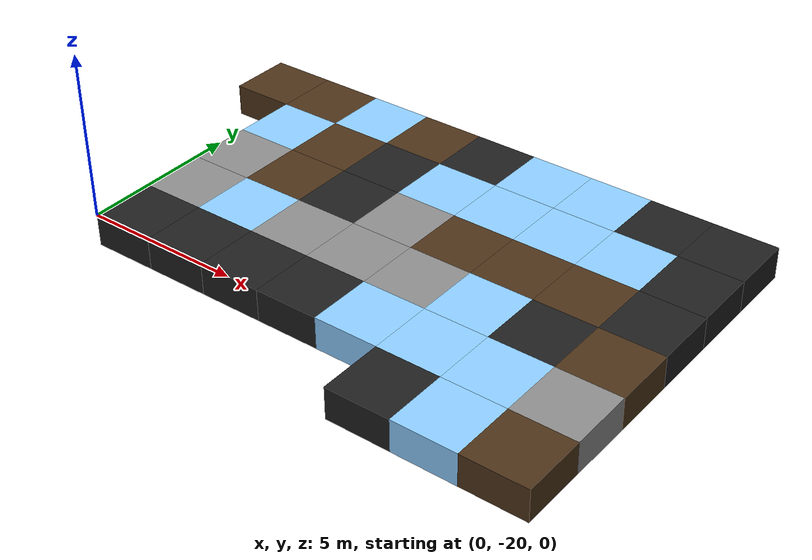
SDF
<sdf version="1.5">
 <world name="squares_example">
  <model name="tile_21_5">
   <static>true</static>
   <pose>11.000 -21.000 -0.500 0 0 0</pose>
   <link name="link">
    <collision name="col">
     <geometry><box><size>2.0 2.0 1.0</size></box></geometry>
     <surface>
      <friction>
       <ode><mu>0.4</mu><mu2>0.15</mu2><fdir1>1 0 0</fdir1><slip1>0.0</slip1><slip2>0.0</slip2></ode>
       <torsional>
        <coefficient>0.03</coefficient>
        <use_patch_radius>false</use_patch_radius>
        <surface_radius>0.12</surface_radius>
        <ode><slip>0.0</slip></ode>
       </torsional>
      </friction>
      <bounce><restitution_coefficient>0.0</restitution_coefficient><threshold>0.1</threshold></bounce>
      <contact>
       <ode><kp>1000000000.0</kp><kd>1000000.0</kd><max_vel>0.01</max_vel><min_depth>0.0</min_depth></ode>
      </contact>
     </surface>
    </collision>
    <visual name="visual">
     <geometry><box><size>2.0 2.0 1.0</size></box></geometry>
     <material>
      <diffuse>0.12 0.12 0.12 1</diffuse>
      <ambient>0 0 0 0</ambient>
      <specular>0 0 0 1</specular>
      <emissive>0 0 0 1</emissive>
     </material>
    </visual>
   </link>
  </model>
  <model name="tile_22_5">
   <static>true</static>
   <pose>13.000 -21.000 -0.500 0 0 0</pose>
   <link name="link">
    <collision name="col">
     <geometry><box><size>2.0 2.0 1.0</size></box></geometry>
     <surface>
      <friction>
       <ode><mu>0.03</mu><mu2>0.02</mu2><fdir1>1 0 0</fdir1><slip1>0.03</slip1><slip2>0.03</slip2></ode>
       <torsional>
        <coefficient>0.005</coefficient>
        <use_patch_radius>false</use_patch_radius>
        <surface_radius>0.12</surface_radius>
        <ode><slip>0.01</slip></ode>
       </torsional>
      </friction>
      <bounce><restitution_coefficient>0.0</restitution_coefficient><threshold>0.1</threshold></bounce>
      <contact>
       <ode><kp>10000000.0</kp><kd>1000.0</kd><max_vel>0.01</max_vel><min_depth>0.0</min_depth></ode>
      </contact>
     </surface>
    </collision>
    <visual name="visual">
     <geometry><box><size>2.0 2.0 1.0</size></box></geometry>
     <material>
      <diffuse>0.55 0.80 1.00 1</diffuse>
      <ambient>0 0 0 0</ambient>
      <specular>0 0 0 1</specular>
      <emissive>0 0 0 1</emissive>
     </material>
    </visual>
   </link>
  </model>
  <model name="tile_23_5">
   <static>true</static>
   <pose>15.000 -21.000 -0.500 0 0 0</pose>
   <link name="link">
    <collision name="col">
     <geometry><box><size>2.0 2.0 1.0</size></box></geometry>
     <surface>
      <friction>
       <ode><mu>0.6</mu><mu2>0.4</mu2><fdir1>1 0 0</fdir1><slip1>0.08</slip1><slip2>0.08</slip2></ode>
       <torsional>
        <coefficient>0.03</coefficient>
        <use_patch_radius>false</use_patch_radius>
        <surface_radius>0.12</surface_radius>
        <ode><slip>0.0</slip></ode>
       </torsional>
      </friction>
      <bounce><restitution_coefficient>0.0</restitution_coefficient><threshold>0.1</threshold></bounce>
      <contact>
       <ode><kp>1000000.0</kp><kd>10000.0</kd><max_vel>0.01</max_vel><min_depth>0.0</min_depth></ode>
      </contact>
     </surface>
    </collision>
    <visual name="visual">
     <geometry><box><size>2.0 2.0 1.0</size></box></geometry>
     <material>
      <diffuse>0.30 0.20 0.10 1</diffuse>
      <ambient>0 0 0 0</ambient>
      <specular>0 0 0 1</specular>
      <emissive>0 0 0 1</emissive>
     </material>
    </visual>
   </link>
  </model>
  <model name="tile_16_6">
   <static>true</static>
   <pose>1.000 -19.000 -0.500 0 0 0</pose>
   <link name="link">
    <collision name="col">
     <geometry><box><size>2.0 2.0 1.0</size></box></geometry>
     <surface>
      <friction>
       <ode><mu>0.4</mu><mu2>0.15</mu2><fdir1>1 0 0</fdir1><slip1>0.0</slip1><slip2>0.0</slip2></ode>
       <torsional>
        <coefficient>0.03</coefficient>
        <use_patch_radius>false</use_patch_radius>
        <surface_radius>0.12</surface_radius>
        <ode><slip>0.0</slip></ode>
       </torsional>
      </friction>
      <bounce><restitution_coefficient>0.0</restitution_coefficient><threshold>0.1</threshold></bounce>
      <contact>
       <ode><kp>1000000000.0</kp><kd>1000000.0</kd><max_vel>0.01</max_vel><min_depth>0.0</min_depth></ode>
      </contact>
     </surface>
    </collision>
    <visual name="visual">
     <geometry><box><size>2.0 2.0 1.0</size></box></geometry>
     <material>
      <diffuse>0.12 0.12 0.12 1</diffuse>
      <ambient>0 0 0 0</ambient>
      <specular>0 0 0 1</specular>
      <emissive>0 0 0 1</emissive>
     </material>
    </visual>
   </link>
  </model>
  <model name="tile_17_6">
   <static>true</static>
   <pose>3.000 -19.000 -0.500 0 0 0</pose>
   <link name="link">
    <collision name="col">
     <geometry><box><size>2.0 2.0 1.0</size></box></geometry>
     <surface>
      <friction>
       <ode><mu>0.4</mu><mu2>0.15</mu2><fdir1>1 0 0</fdir1><slip1>0.0</slip1><slip2>0.0</slip2></ode>
       <torsional>
        <coefficient>0.03</coefficient>
        <use_patch_radius>false</use_patch_radius>
        <surface_radius>0.12</surface_radius>
        <ode><slip>0.0</slip></ode>
       </torsional>
      </friction>
      <bounce><restitution_coefficient>0.0</restitution_coefficient><threshold>0.1</threshold></bounce>
      <contact>
       <ode><kp>1000000000.0</kp><kd>1000000.0</kd><max_vel>0.01</max_vel><min_depth>0.0</min_depth></ode>
      </contact>
     </surface>
    </collision>
    <visual name="visual">
     <geometry><box><size>2.0 2.0 1.0</size></box></geometry>
     <material>
      <diffuse>0.12 0.12 0.12 1</diffuse>
      <ambient>0 0 0 0</ambient>
      <specular>0 0 0 1</specular>
      <emissive>0 0 0 1</emissive>
     </material>
    </visual>
   </link>
  </model>
  <model name="tile_18_6">
   <static>true</static>
   <pose>5.000 -19.000 -0.500 0 0 0</pose>
   <link name="link">
    <collision name="col">
     <geometry><box><size>2.0 2.0 1.0</size></box></geometry>
     <surface>
      <friction>
       <ode><mu>0.4</mu><mu2>0.15</mu2><fdir1>1 0 0</fdir1><slip1>0.0</slip1><slip2>0.0</slip2></ode>
       <torsional>
        <coefficient>0.03</coefficient>
        <use_patch_radius>false</use_patch_radius>
        <surface_radius>0.12</surface_radius>
        <ode><slip>0.0</slip></ode>
       </torsional>
      </friction>
      <bounce><restitution_coefficient>0.0</restitution_coefficient><threshold>0.1</threshold></bounce>
      <contact>
       <ode><kp>1000000000.0</kp><kd>1000000.0</kd><max_vel>0.01</max_vel><min_depth>0.0</min_depth></ode>
      </contact>
     </surface>
    </collision>
    <visual name="visual">
     <geometry><box><size>2.0 2.0 1.0</size></box></geometry>
     <material>
      <diffuse>0.12 0.12 0.12 1</diffuse>
      <ambient>0 0 0 0</ambient>
      <specular>0 0 0 1</specular>
      <emissive>0 0 0 1</emissive>
     </material>
    </visual>
   </link>
  </model>
  <model name="tile_19_6">
   <static>true</static>
   <pose>7.000 -19.000 -0.500 0 0 0</pose>
   <link name="link">
    <collision name="col">
     <geometry><box><size>2.0 2.0 1.0</size></box></geometry>
     <surface>
      <friction>
       <ode><mu>0.4</mu><mu2>0.15</mu2><fdir1>1 0 0</fdir1><slip1>0.0</slip1><slip2>0.0</slip2></ode>
       <torsional>
        <coefficient>0.03</coefficient>
        <use_patch_radius>false</use_patch_radius>
        <surface_radius>0.12</surface_radius>
        <ode><slip>0.0</slip></ode>
       </torsional>
      </friction>
      <bounce><restitution_coefficient>0.0</restitution_coefficient><threshold>0.1</threshold></bounce>
      <contact>
       <ode><kp>1000000000.0</kp><kd>1000000.0</kd><max_vel>0.01</max_vel><min_depth>0.0</min_depth></ode>
      </contact>
     </surface>
    </collision>
    <visual name="visual">
     <geometry><box><size>2.0 2.0 1.0</size></box></geometry>
     <material>
      <diffuse>0.12 0.12 0.12 1</diffuse>
      <ambient>0 0 0 0</ambient>
      <specular>0 0 0 1</specular>
      <emissive>0 0 0 1</emissive>
     </material>
    </visual>
   </link>
  </model>
  <model name="tile_20_6">
   <static>true</static>
   <pose>9.000 -19.000 -0.500 0 0 0</pose>
   <link name="link">
    <collision name="col">
     <geometry><box><size>2.0 2.0 1.0</size></box></geometry>
     <surface>
      <friction>
       <ode><mu>0.03</mu><mu2>0.02</mu2><fdir1>1 0 0</fdir1><slip1>0.03</slip1><slip2>0.03</slip2></ode>
       <torsional>
        <coefficient>0.005</coefficient>
        <use_patch_radius>false</use_patch_radius>
        <surface_radius>0.12</surface_radius>
        <ode><slip>0.01</slip></ode>
       </torsional>
      </friction>
      <bounce><restitution_coefficient>0.0</restitution_coefficient><threshold>0.1</threshold></bounce>
      <contact>
       <ode><kp>10000000.0</kp><kd>1000.0</kd><max_vel>0.01</max_vel><min_depth>0.0</min_depth></ode>
      </contact>
     </surface>
    </collision>
    <visual name="visual">
     <geometry><box><size>2.0 2.0 1.0</size></box></geometry>
     <material>
      <diffuse>0.55 0.80 1.00 1</diffuse>
      <ambient>0 0 0 0</ambient>
      <specular>0 0 0 1</specular>
      <emissive>0 0 0 1</emissive>
     </material>
    </visual>
   </link>
  </model>
  <model name="tile_21_6">
   <static>true</static>
   <pose>11.000 -19.000 -0.500 0 0 0</pose>
   <link name="link">
    <collision name="col">
     <geometry><box><size>2.0 2.0 1.0</size></box></geometry>
     <surface>
      <friction>
       <ode><mu>0.03</mu><mu2>0.02</mu2><fdir1>1 0 0</fdir1><slip1>0.03</slip1><slip2>0.03</slip2></ode>
       <torsional>
        <coefficient>0.005</coefficient>
        <use_patch_radius>false</use_patch_radius>
        <surface_radius>0.12</surface_radius>
        <ode><slip>0.01</slip></ode>
       </torsional>
      </friction>
      <bounce><restitution_coefficient>0.0</restitution_coefficient><threshold>0.1</threshold></bounce>
      <contact>
       <ode><kp>10000000.0</kp><kd>1000.0</kd><max_vel>0.01</max_vel><min_depth>0.0</min_depth></ode>
      </contact>
     </surface>
    </collision>
    <visual name="visual">
     <geometry><box><size>2.0 2.0 1.0</size></box></geometry>
     <material>
      <diffuse>0.55 0.80 1.00 1</diffuse>
      <ambient>0 0 0 0</ambient>
      <specular>0 0 0 1</specular>
      <emissive>0 0 0 1</emissive>
     </material>
    </visual>
   </link>
  </model>
  <model name="tile_22_6">
   <static>true</static>
   <pose>13.000 -19.000 -0.500 0 0 0</pose>
   <link name="link">
    <collision name="col">
     <geometry><box><size>2.0 2.0 1.0</size></box></geometry>
     <surface>
      <friction>
       <ode><mu>0.03</mu><mu2>0.02</mu2><fdir1>1 0 0</fdir1><slip1>0.03</slip1><slip2>0.03</slip2></ode>
       <torsional>
        <coefficient>0.005</coefficient>
        <use_patch_radius>false</use_patch_radius>
        <surface_radius>0.12</surface_radius>
        <ode><slip>0.01</slip></ode>
       </torsional>
      </friction>
      <bounce><restitution_coefficient>0.0</restitution_coefficient><threshold>0.1</threshold></bounce>
      <contact>
       <ode><kp>10000000.0</kp><kd>1000.0</kd><max_vel>0.01</max_vel><min_depth>0.0</min_depth></ode>
      </contact>
     </surface>
    </collision>
    <visual name="visual">
     <geometry><box><size>2.0 2.0 1.0</size></box></geometry>
     <material>
      <diffuse>0.55 0.80 1.00 1</diffuse>
      <ambient>0 0 0 0</ambient>
      <specular>0 0 0 1</specular>
      <emissive>0 0 0 1</emissive>
     </material>
    </visual>
   </link>
  </model>
  <model name="tile_23_6">
   <static>true</static>
   <pose>15.000 -19.000 -0.500 0 0 0</pose>
   <link name="link">
    <collision name="col">
     <geometry><box><size>2.0 2.0 1.0</size></box></geometry>
     <surface>
      <friction>
       <ode><mu>0.8</mu><mu2>0.3</mu2><fdir1>1 0 0</fdir1><slip1>0.0</slip1><slip2>0.0</slip2></ode>
       <torsional>
        <coefficient>0.03</coefficient>
        <use_patch_radius>false</use_patch_radius>
        <surface_radius>0.12</surface_radius>
        <ode><slip>0.0</slip></ode>
       </torsional>
      </friction>
      <bounce><restitution_coefficient>0.0</restitution_coefficient><threshold>0.1</threshold></bounce>
      <contact>
       <ode><kp>10000000000.0</kp><kd>10000000.0</kd><max_vel>0.01</max_vel><min_depth>0.0</min_depth></ode>
      </contact>
     </surface>
    </collision>
    <visual name="visual">
     <geometry><box><size>2.0 2.0 1.0</size></box></geometry>
     <material>
      <diffuse>0.55 0.55 0.55 1</diffuse>
      <ambient>0 0 0 0</ambient>
      <specular>0 0 0 1</specular>
      <emissive>0 0 0 1</emissive>
     </material>
    </visual>
   </link>
  </model>
  <model name="tile_16_7">
   <static>true</static>
   <pose>1.000 -17.000 -0.500 0 0 0</pose>
   <link name="link">
    <collision name="col">
     <geometry><box><size>2.0 2.0 1.0</size></box></geometry>
     <surface>
      <friction>
       <ode><mu>0.8</mu><mu2>0.3</mu2><fdir1>1 0 0</fdir1><slip1>0.0</slip1><slip2>0.0</slip2></ode>
       <torsional>
        <coefficient>0.03</coefficient>
        <use_patch_radius>false</use_patch_radius>
        <surface_radius>0.12</surface_radius>
        <ode><slip>0.0</slip></ode>
       </torsional>
      </friction>
      <bounce><restitution_coefficient>0.0</restitution_coefficient><threshold>0.1</threshold></bounce>
      <contact>
       <ode><kp>10000000000.0</kp><kd>10000000.0</kd><max_vel>0.01</max_vel><min_depth>0.0</min_depth></ode>
      </contact>
     </surface>
    </collision>
    <visual name="visual">
     <geometry><box><size>2.0 2.0 1.0</size></box></geometry>
     <material>
      <diffuse>0.55 0.55 0.55 1</diffuse>
      <ambient>0 0 0 0</ambient>
      <specular>0 0 0 1</specular>
      <emissive>0 0 0 1</emissive>
     </material>
    </visual>
   </link>
  </model>
  <model name="tile_17_7">
   <static>true</static>
   <pose>3.000 -17.000 -0.500 0 0 0</pose>
   <link name="link">
    <collision name="col">
     <geometry><box><size>2.0 2.0 1.0</size></box></geometry>
     <surface>
      <friction>
       <ode><mu>0.03</mu><mu2>0.02</mu2><fdir1>1 0 0</fdir1><slip1>0.03</slip1><slip2>0.03</slip2></ode>
       <torsional>
        <coefficient>0.005</coefficient>
        <use_patch_radius>false</use_patch_radius>
        <surface_radius>0.12</surface_radius>
        <ode><slip>0.01</slip></ode>
       </torsional>
      </friction>
      <bounce><restitution_coefficient>0.0</restitution_coefficient><threshold>0.1</threshold></bounce>
      <contact>
       <ode><kp>10000000.0</kp><kd>1000.0</kd><max_vel>0.01</max_vel><min_depth>0.0</min_depth></ode>
      </contact>
     </surface>
    </collision>
    <visual name="visual">
     <geometry><box><size>2.0 2.0 1.0</size></box></geometry>
     <material>
      <diffuse>0.55 0.80 1.00 1</diffuse>
      <ambient>0 0 0 0</ambient>
      <specular>0 0 0 1</specular>
      <emissive>0 0 0 1</emissive>
     </material>
    </visual>
   </link>
  </model>
  <model name="tile_18_7">
   <static>true</static>
   <pose>5.000 -17.000 -0.500 0 0 0</pose>
   <link name="link">
    <collision name="col">
     <geometry><box><size>2.0 2.0 1.0</size></box></geometry>
     <surface>
      <friction>
       <ode><mu>0.8</mu><mu2>0.3</mu2><fdir1>1 0 0</fdir1><slip1>0.0</slip1><slip2>0.0</slip2></ode>
       <torsional>
        <coefficient>0.03</coefficient>
        <use_patch_radius>false</use_patch_radius>
        <surface_radius>0.12</surface_radius>
        <ode><slip>0.0</slip></ode>
       </torsional>
      </friction>
      <bounce><restitution_coefficient>0.0</restitution_coefficient><threshold>0.1</threshold></bounce>
      <contact>
       <ode><kp>10000000000.0</kp><kd>10000000.0</kd><max_vel>0.01</max_vel><min_depth>0.0</min_depth></ode>
      </contact>
     </surface>
    </collision>
    <visual name="visual">
     <geometry><box><size>2.0 2.0 1.0</size></box></geometry>
     <material>
      <diffuse>0.55 0.55 0.55 1</diffuse>
      <ambient>0 0 0 0</ambient>
      <specular>0 0 0 1</specular>
      <emissive>0 0 0 1</emissive>
     </material>
    </visual>
   </link>
  </model>
  <model name="tile_19_7">
   <static>true</static>
   <pose>7.000 -17.000 -0.500 0 0 0</pose>
   <link name="link">
    <collision name="col">
     <geometry><box><size>2.0 2.0 1.0</size></box></geometry>
     <surface>
      <friction>
       <ode><mu>0.8</mu><mu2>0.3</mu2><fdir1>1 0 0</fdir1><slip1>0.0</slip1><slip2>0.0</slip2></ode>
       <torsional>
        <coefficient>0.03</coefficient>
        <use_patch_radius>false</use_patch_radius>
        <surface_radius>0.12</surface_radius>
        <ode><slip>0.0</slip></ode>
       </torsional>
      </friction>
      <bounce><restitution_coefficient>0.0</restitution_coefficient><threshold>0.1</threshold></bounce>
      <contact>
       <ode><kp>10000000000.0</kp><kd>10000000.0</kd><max_vel>0.01</max_vel><min_depth>0.0</min_depth></ode>
      </contact>
     </surface>
    </collision>
    <visual name="visual">
     <geometry><box><size>2.0 2.0 1.0</size></box></geometry>
     <material>
      <diffuse>0.55 0.55 0.55 1</diffuse>
      <ambient>0 0 0 0</ambient>
      <specular>0 0 0 1</specular>
      <emissive>0 0 0 1</emissive>
     </material>
    </visual>
   </link>
  </model>
  <model name="tile_20_7">
   <static>true</static>
   <pose>9.000 -17.000 -0.500 0 0 0</pose>
   <link name="link">
    <collision name="col">
     <geometry><box><size>2.0 2.0 1.0</size></box></geometry>
     <surface>
      <friction>
       <ode><mu>0.8</mu><mu2>0.3</mu2><fdir1>1 0 0</fdir1><slip1>0.0</slip1><slip2>0.0</slip2></ode>
       <torsional>
        <coefficient>0.03</coefficient>
        <use_patch_radius>false</use_patch_radius>
        <surface_radius>0.12</surface_radius>
        <ode><slip>0.0</slip></ode>
       </torsional>
      </friction>
      <bounce><restitution_coefficient>0.0</restitution_coefficient><threshold>0.1</threshold></bounce>
      <contact>
       <ode><kp>10000000000.0</kp><kd>10000000.0</kd><max_vel>0.01</max_vel><min_depth>0.0</min_depth></ode>
      </contact>
     </surface>
    </collision>
    <visual name="visual">
     <geometry><box><size>2.0 2.0 1.0</size></box></geometry>
     <material>
      <diffuse>0.55 0.55 0.55 1</diffuse>
      <ambient>0 0 0 0</ambient>
      <specular>0 0 0 1</specular>
      <emissive>0 0 0 1</emissive>
     </material>
    </visual>
   </link>
  </model>
  <model name="tile_21_7">
   <static>true</static>
   <pose>11.000 -17.000 -0.500 0 0 0</pose>
   <link name="link">
    <collision name="col">
     <geometry><box><size>2.0 2.0 1.0</size></box></geometry>
     <surface>
      <friction>
       <ode><mu>0.03</mu><mu2>0.02</mu2><fdir1>1 0 0</fdir1><slip1>0.03</slip1><slip2>0.03</slip2></ode>
       <torsional>
        <coefficient>0.005</coefficient>
        <use_patch_radius>false</use_patch_radius>
        <surface_radius>0.12</surface_radius>
        <ode><slip>0.01</slip></ode>
       </torsional>
      </friction>
      <bounce><restitution_coefficient>0.0</restitution_coefficient><threshold>0.1</threshold></bounce>
      <contact>
       <ode><kp>10000000.0</kp><kd>1000.0</kd><max_vel>0.01</max_vel><min_depth>0.0</min_depth></ode>
      </contact>
     </surface>
    </collision>
    <visual name="visual">
     <geometry><box><size>2.0 2.0 1.0</size></box></geometry>
     <material>
      <diffuse>0.55 0.80 1.00 1</diffuse>
      <ambient>0 0 0 0</ambient>
      <specular>0 0 0 1</specular>
      <emissive>0 0 0 1</emissive>
     </material>
    </visual>
   </link>
  </model>
  <model name="tile_22_7">
   <static>true</static>
   <pose>13.000 -17.000 -0.500 0 0 0</pose>
   <link name="link">
    <collision name="col">
     <geometry><box><size>2.0 2.0 1.0</size></box></geometry>
     <surface>
      <friction>
       <ode><mu>0.4</mu><mu2>0.15</mu2><fdir1>1 0 0</fdir1><slip1>0.0</slip1><slip2>0.0</slip2></ode>
       <torsional>
        <coefficient>0.03</coefficient>
        <use_patch_radius>false</use_patch_radius>
        <surface_radius>0.12</surface_radius>
        <ode><slip>0.0</slip></ode>
       </torsional>
      </friction>
      <bounce><restitution_coefficient>0.0</restitution_coefficient><threshold>0.1</threshold></bounce>
      <contact>
       <ode><kp>1000000000.0</kp><kd>1000000.0</kd><max_vel>0.01</max_vel><min_depth>0.0</min_depth></ode>
      </contact>
     </surface>
    </collision>
    <visual name="visual">
     <geometry><box><size>2.0 2.0 1.0</size></box></geometry>
     <material>
      <diffuse>0.12 0.12 0.12 1</diffuse>
      <ambient>0 0 0 0</ambient>
      <specular>0 0 0 1</specular>
      <emissive>0 0 0 1</emissive>
     </material>
    </visual>
   </link>
  </model>
  <model name="tile_23_7">
   <static>true</static>
   <pose>15.000 -17.000 -0.500 0 0 0</pose>
   <link name="link">
    <collision name="col">
     <geometry><box><size>2.0 2.0 1.0</size></box></geometry>
     <surface>
      <friction>
       <ode><mu>0.6</mu><mu2>0.4</mu2><fdir1>1 0 0</fdir1><slip1>0.08</slip1><slip2>0.08</slip2></ode>
       <torsional>
        <coefficient>0.03</coefficient>
        <use_patch_radius>false</use_patch_radius>
        <surface_radius>0.12</surface_radius>
        <ode><slip>0.0</slip></ode>
       </torsional>
      </friction>
      <bounce><restitution_coefficient>0.0</restitution_coefficient><threshold>0.1</threshold></bounce>
      <contact>
       <ode><kp>1000000.0</kp><kd>10000.0</kd><max_vel>0.01</max_vel><min_depth>0.0</min_depth></ode>
      </contact>
     </surface>
    </collision>
    <visual name="visual">
     <geometry><box><size>2.0 2.0 1.0</size></box></geometry>
     <material>
      <diffuse>0.30 0.20 0.10 1</diffuse>
      <ambient>0 0 0 0</ambient>
      <specular>0 0 0 1</specular>
      <emissive>0 0 0 1</emissive>
     </material>
    </visual>
   </link>
  </model>
  <model name="tile_16_8">
   <static>true</static>
   <pose>1.000 -15.000 -0.500 0 0 0</pose>
   <link name="link">
    <collision name="col">
     <geometry><box><size>2.0 2.0 1.0</size></box></geometry>
     <surface>
      <friction>
       <ode><mu>0.8</mu><mu2>0.3</mu2><fdir1>1 0 0</fdir1><slip1>0.0</slip1><slip2>0.0</slip2></ode>
       <torsional>
        <coefficient>0.03</coefficient>
        <use_patch_radius>false</use_patch_radius>
        <surface_radius>0.12</surface_radius>
        <ode><slip>0.0</slip></ode>
       </torsional>
      </friction>
      <bounce><restitution_coefficient>0.0</restitution_coefficient><threshold>0.1</threshold></bounce>
      <contact>
       <ode><kp>10000000000.0</kp><kd>10000000.0</kd><max_vel>0.01</max_vel><min_depth>0.0</min_depth></ode>
      </contact>
     </surface>
    </collision>
    <visual name="visual">
     <geometry><box><size>2.0 2.0 1.0</size></box></geometry>
     <material>
      <diffuse>0.55 0.55 0.55 1</diffuse>
      <ambient>0 0 0 0</ambient>
      <specular>0 0 0 1</specular>
      <emissive>0 0 0 1</emissive>
     </material>
    </visual>
   </link>
  </model>
  <model name="tile_17_8">
   <static>true</static>
   <pose>3.000 -15.000 -0.500 0 0 0</pose>
   <link name="link">
    <collision name="col">
     <geometry><box><size>2.0 2.0 1.0</size></box></geometry>
     <surface>
      <friction>
       <ode><mu>0.6</mu><mu2>0.4</mu2><fdir1>1 0 0</fdir1><slip1>0.08</slip1><slip2>0.08</slip2></ode>
       <torsional>
        <coefficient>0.03</coefficient>
        <use_patch_radius>false</use_patch_radius>
        <surface_radius>0.12</surface_radius>
        <ode><slip>0.0</slip></ode>
       </torsional>
      </friction>
      <bounce><restitution_coefficient>0.0</restitution_coefficient><threshold>0.1</threshold></bounce>
      <contact>
       <ode><kp>1000000.0</kp><kd>10000.0</kd><max_vel>0.01</max_vel><min_depth>0.0</min_depth></ode>
      </contact>
     </surface>
    </collision>
    <visual name="visual">
     <geometry><box><size>2.0 2.0 1.0</size></box></geometry>
     <material>
      <diffuse>0.30 0.20 0.10 1</diffuse>
      <ambient>0 0 0 0</ambient>
      <specular>0 0 0 1</specular>
      <emissive>0 0 0 1</emissive>
     </material>
    </visual>
   </link>
  </model>
  <model name="tile_18_8">
   <static>true</static>
   <pose>5.000 -15.000 -0.500 0 0 0</pose>
   <link name="link">
    <collision name="col">
     <geometry><box><size>2.0 2.0 1.0</size></box></geometry>
     <surface>
      <friction>
       <ode><mu>0.4</mu><mu2>0.15</mu2><fdir1>1 0 0</fdir1><slip1>0.0</slip1><slip2>0.0</slip2></ode>
       <torsional>
        <coefficient>0.03</coefficient>
        <use_patch_radius>false</use_patch_radius>
        <surface_radius>0.12</surface_radius>
        <ode><slip>0.0</slip></ode>
       </torsional>
      </friction>
      <bounce><restitution_coefficient>0.0</restitution_coefficient><threshold>0.1</threshold></bounce>
      <contact>
       <ode><kp>1000000000.0</kp><kd>1000000.0</kd><max_vel>0.01</max_vel><min_depth>0.0</min_depth></ode>
      </contact>
     </surface>
    </collision>
    <visual name="visual">
     <geometry><box><size>2.0 2.0 1.0</size></box></geometry>
     <material>
      <diffuse>0.12 0.12 0.12 1</diffuse>
      <ambient>0 0 0 0</ambient>
      <specular>0 0 0 1</specular>
      <emissive>0 0 0 1</emissive>
     </material>
    </visual>
   </link>
  </model>
  <model name="tile_19_8">
   <static>true</static>
   <pose>7.000 -15.000 -0.500 0 0 0</pose>
   <link name="link">
    <collision name="col">
     <geometry><box><size>2.0 2.0 1.0</size></box></geometry>
     <surface>
      <friction>
       <ode><mu>0.8</mu><mu2>0.3</mu2><fdir1>1 0 0</fdir1><slip1>0.0</slip1><slip2>0.0</slip2></ode>
       <torsional>
        <coefficient>0.03</coefficient>
        <use_patch_radius>false</use_patch_radius>
        <surface_radius>0.12</surface_radius>
        <ode><slip>0.0</slip></ode>
       </torsional>
      </friction>
      <bounce><restitution_coefficient>0.0</restitution_coefficient><threshold>0.1</threshold></bounce>
      <contact>
       <ode><kp>10000000000.0</kp><kd>10000000.0</kd><max_vel>0.01</max_vel><min_depth>0.0</min_depth></ode>
      </contact>
     </surface>
    </collision>
    <visual name="visual">
     <geometry><box><size>2.0 2.0 1.0</size></box></geometry>
     <material>
      <diffuse>0.55 0.55 0.55 1</diffuse>
      <ambient>0 0 0 0</ambient>
      <specular>0 0 0 1</specular>
      <emissive>0 0 0 1</emissive>
     </material>
    </visual>
   </link>
  </model>
  <model name="tile_20_8">
   <static>true</static>
   <pose>9.000 -15.000 -0.500 0 0 0</pose>
   <link name="link">
    <collision name="col">
     <geometry><box><size>2.0 2.0 1.0</size></box></geometry>
     <surface>
      <friction>
       <ode><mu>0.6</mu><mu2>0.4</mu2><fdir1>1 0 0</fdir1><slip1>0.08</slip1><slip2>0.08</slip2></ode>
       <torsional>
        <coefficient>0.03</coefficient>
        <use_patch_radius>false</use_patch_radius>
        <surface_radius>0.12</surface_radius>
        <ode><slip>0.0</slip></ode>
       </torsional>
      </friction>
      <bounce><restitution_coefficient>0.0</restitution_coefficient><threshold>0.1</threshold></bounce>
      <contact>
       <ode><kp>1000000.0</kp><kd>10000.0</kd><max_vel>0.01</max_vel><min_depth>0.0</min_depth></ode>
      </contact>
     </surface>
    </collision>
    <visual name="visual">
     <geometry><box><size>2.0 2.0 1.0</size></box></geometry>
     <material>
      <diffuse>0.30 0.20 0.10 1</diffuse>
      <ambient>0 0 0 0</ambient>
      <specular>0 0 0 1</specular>
      <emissive>0 0 0 1</emissive>
     </material>
    </visual>
   </link>
  </model>
  <model name="tile_21_8">
   <static>true</static>
   <pose>11.000 -15.000 -0.500 0 0 0</pose>
   <link name="link">
    <collision name="col">
     <geometry><box><size>2.0 2.0 1.0</size></box></geometry>
     <surface>
      <friction>
       <ode><mu>0.6</mu><mu2>0.4</mu2><fdir1>1 0 0</fdir1><slip1>0.08</slip1><slip2>0.08</slip2></ode>
       <torsional>
        <coefficient>0.03</coefficient>
        <use_patch_radius>false</use_patch_radius>
        <surface_radius>0.12</surface_radius>
        <ode><slip>0.0</slip></ode>
       </torsional>
      </friction>
      <bounce><restitution_coefficient>0.0</restitution_coefficient><threshold>0.1</threshold></bounce>
      <contact>
       <ode><kp>1000000.0</kp><kd>10000.0</kd><max_vel>0.01</max_vel><min_depth>0.0</min_depth></ode>
      </contact>
     </surface>
    </collision>
    <visual name="visual">
     <geometry><box><size>2.0 2.0 1.0</size></box></geometry>
     <material>
      <diffuse>0.30 0.20 0.10 1</diffuse>
      <ambient>0 0 0 0</ambient>
      <specular>0 0 0 1</specular>
      <emissive>0 0 0 1</emissive>
     </material>
    </visual>
   </link>
  </model>
  <model name="tile_22_8">
   <static>true</static>
   <pose>13.000 -15.000 -0.500 0 0 0</pose>
   <link name="link">
    <collision name="col">
     <geometry><box><size>2.0 2.0 1.0</size></box></geometry>
     <surface>
      <friction>
       <ode><mu>0.6</mu><mu2>0.4</mu2><fdir1>1 0 0</fdir1><slip1>0.08</slip1><slip2>0.08</slip2></ode>
       <torsional>
        <coefficient>0.03</coefficient>
        <use_patch_radius>false</use_patch_radius>
        <surface_radius>0.12</surface_radius>
        <ode><slip>0.0</slip></ode>
       </torsional>
      </friction>
      <bounce><restitution_coefficient>0.0</restitution_coefficient><threshold>0.1</threshold></bounce>
      <contact>
       <ode><kp>1000000.0</kp><kd>10000.0</kd><max_vel>0.01</max_vel><min_depth>0.0</min_depth></ode>
      </contact>
     </surface>
    </collision>
    <visual name="visual">
     <geometry><box><size>2.0 2.0 1.0</size></box></geometry>
     <material>
      <diffuse>0.30 0.20 0.10 1</diffuse>
      <ambient>0 0 0 0</ambient>
      <specular>0 0 0 1</specular>
      <emissive>0 0 0 1</emissive>
     </material>
    </visual>
   </link>
  </model>
  <model name="tile_23_8">
   <static>true</static>
   <pose>15.000 -15.000 -0.500 0 0 0</pose>
   <link name="link">
    <collision name="col">
     <geometry><box><size>2.0 2.0 1.0</size></box></geometry>
     <surface>
      <friction>
       <ode><mu>0.4</mu><mu2>0.15</mu2><fdir1>1 0 0</fdir1><slip1>0.0</slip1><slip2>0.0</slip2></ode>
       <torsional>
        <coefficient>0.03</coefficient>
        <use_patch_radius>false</use_patch_radius>
        <surface_radius>0.12</surface_radius>
        <ode><slip>0.0</slip></ode>
       </torsional>
      </friction>
      <bounce><restitution_coefficient>0.0</restitution_coefficient><threshold>0.1</threshold></bounce>
      <contact>
       <ode><kp>1000000000.0</kp><kd>1000000.0</kd><max_vel>0.01</max_vel><min_depth>0.0</min_depth></ode>
      </contact>
     </surface>
    </collision>
    <visual name="visual">
     <geometry><box><size>2.0 2.0 1.0</size></box></geometry>
     <material>
      <diffuse>0.12 0.12 0.12 1</diffuse>
      <ambient>0 0 0 0</ambient>
      <specular>0 0 0 1</specular>
      <emissive>0 0 0 1</emissive>
     </material>
    </visual>
   </link>
  </model>
  <model name="tile_16_9">
   <static>true</static>
   <pose>1.000 -13.000 -0.500 0 0 0</pose>
   <link name="link">
    <collision name="col">
     <geometry><box><size>2.0 2.0 1.0</size></box></geometry>
     <surface>
      <friction>
       <ode><mu>0.03</mu><mu2>0.02</mu2><fdir1>1 0 0</fdir1><slip1>0.03</slip1><slip2>0.03</slip2></ode>
       <torsional>
        <coefficient>0.005</coefficient>
        <use_patch_radius>false</use_patch_radius>
        <surface_radius>0.12</surface_radius>
        <ode><slip>0.01</slip></ode>
       </torsional>
      </friction>
      <bounce><restitution_coefficient>0.0</restitution_coefficient><threshold>0.1</threshold></bounce>
      <contact>
       <ode><kp>10000000.0</kp><kd>1000.0</kd><max_vel>0.01</max_vel><min_depth>0.0</min_depth></ode>
      </contact>
     </surface>
    </collision>
    <visual name="visual">
     <geometry><box><size>2.0 2.0 1.0</size></box></geometry>
     <material>
      <diffuse>0.55 0.80 1.00 1</diffuse>
      <ambient>0 0 0 0</ambient>
      <specular>0 0 0 1</specular>
      <emissive>0 0 0 1</emissive>
     </material>
    </visual>
   </link>
  </model>
  <model name="tile_17_9">
   <static>true</static>
   <pose>3.000 -13.000 -0.500 0 0 0</pose>
   <link name="link">
    <collision name="col">
     <geometry><box><size>2.0 2.0 1.0</size></box></geometry>
     <surface>
      <friction>
       <ode><mu>0.6</mu><mu2>0.4</mu2><fdir1>1 0 0</fdir1><slip1>0.08</slip1><slip2>0.08</slip2></ode>
       <torsional>
        <coefficient>0.03</coefficient>
        <use_patch_radius>false</use_patch_radius>
        <surface_radius>0.12</surface_radius>
        <ode><slip>0.0</slip></ode>
       </torsional>
      </friction>
      <bounce><restitution_coefficient>0.0</restitution_coefficient><threshold>0.1</threshold></bounce>
      <contact>
       <ode><kp>1000000.0</kp><kd>10000.0</kd><max_vel>0.01</max_vel><min_depth>0.0</min_depth></ode>
      </contact>
     </surface>
    </collision>
    <visual name="visual">
     <geometry><box><size>2.0 2.0 1.0</size></box></geometry>
     <material>
      <diffuse>0.30 0.20 0.10 1</diffuse>
      <ambient>0 0 0 0</ambient>
      <specular>0 0 0 1</specular>
      <emissive>0 0 0 1</emissive>
     </material>
    </visual>
   </link>
  </model>
  <model name="tile_18_9">
   <static>true</static>
   <pose>5.000 -13.000 -0.500 0 0 0</pose>
   <link name="link">
    <collision name="col">
     <geometry><box><size>2.0 2.0 1.0</size></box></geometry>
     <surface>
      <friction>
       <ode><mu>0.4</mu><mu2>0.15</mu2><fdir1>1 0 0</fdir1><slip1>0.0</slip1><slip2>0.0</slip2></ode>
       <torsional>
        <coefficient>0.03</coefficient>
        <use_patch_radius>false</use_patch_radius>
        <surface_radius>0.12</surface_radius>
        <ode><slip>0.0</slip></ode>
       </torsional>
      </friction>
      <bounce><restitution_coefficient>0.0</restitution_coefficient><threshold>0.1</threshold></bounce>
      <contact>
       <ode><kp>1000000000.0</kp><kd>1000000.0</kd><max_vel>0.01</max_vel><min_depth>0.0</min_depth></ode>
      </contact>
     </surface>
    </collision>
    <visual name="visual">
     <geometry><box><size>2.0 2.0 1.0</size></box></geometry>
     <material>
      <diffuse>0.12 0.12 0.12 1</diffuse>
      <ambient>0 0 0 0</ambient>
      <specular>0 0 0 1</specular>
      <emissive>0 0 0 1</emissive>
     </material>
    </visual>
   </link>
  </model>
  <model name="tile_19_9">
   <static>true</static>
   <pose>7.000 -13.000 -0.500 0 0 0</pose>
   <link name="link">
    <collision name="col">
     <geometry><box><size>2.0 2.0 1.0</size></box></geometry>
     <surface>
      <friction>
       <ode><mu>0.03</mu><mu2>0.02</mu2><fdir1>1 0 0</fdir1><slip1>0.03</slip1><slip2>0.03</slip2></ode>
       <torsional>
        <coefficient>0.005</coefficient>
        <use_patch_radius>false</use_patch_radius>
        <surface_radius>0.12</surface_radius>
        <ode><slip>0.01</slip></ode>
       </torsional>
      </friction>
      <bounce><restitution_coefficient>0.0</restitution_coefficient><threshold>0.1</threshold></bounce>
      <contact>
       <ode><kp>10000000.0</kp><kd>1000.0</kd><max_vel>0.01</max_vel><min_depth>0.0</min_depth></ode>
      </contact>
     </surface>
    </collision>
    <visual name="visual">
     <geometry><box><size>2.0 2.0 1.0</size></box></geometry>
     <material>
      <diffuse>0.55 0.80 1.00 1</diffuse>
      <ambient>0 0 0 0</ambient>
      <specular>0 0 0 1</specular>
      <emissive>0 0 0 1</emissive>
     </material>
    </visual>
   </link>
  </model>
  <model name="tile_20_9">
   <static>true</static>
   <pose>9.000 -13.000 -0.500 0 0 0</pose>
   <link name="link">
    <collision name="col">
     <geometry><box><size>2.0 2.0 1.0</size></box></geometry>
     <surface>
      <friction>
       <ode><mu>0.03</mu><mu2>0.02</mu2><fdir1>1 0 0</fdir1><slip1>0.03</slip1><slip2>0.03</slip2></ode>
       <torsional>
        <coefficient>0.005</coefficient>
        <use_patch_radius>false</use_patch_radius>
        <surface_radius>0.12</surface_radius>
        <ode><slip>0.01</slip></ode>
       </torsional>
      </friction>
      <bounce><restitution_coefficient>0.0</restitution_coefficient><threshold>0.1</threshold></bounce>
      <contact>
       <ode><kp>10000000.0</kp><kd>1000.0</kd><max_vel>0.01</max_vel><min_depth>0.0</min_depth></ode>
      </contact>
     </surface>
    </collision>
    <visual name="visual">
     <geometry><box><size>2.0 2.0 1.0</size></box></geometry>
     <material>
      <diffuse>0.55 0.80 1.00 1</diffuse>
      <ambient>0 0 0 0</ambient>
      <specular>0 0 0 1</specular>
      <emissive>0 0 0 1</emissive>
     </material>
    </visual>
   </link>
  </model>
  <model name="tile_21_9">
   <static>true</static>
   <pose>11.000 -13.000 -0.500 0 0 0</pose>
   <link name="link">
    <collision name="col">
     <geometry><box><size>2.0 2.0 1.0</size></box></geometry>
     <surface>
      <friction>
       <ode><mu>0.03</mu><mu2>0.02</mu2><fdir1>1 0 0</fdir1><slip1>0.03</slip1><slip2>0.03</slip2></ode>
       <torsional>
        <coefficient>0.005</coefficient>
        <use_patch_radius>false</use_patch_radius>
        <surface_radius>0.12</surface_radius>
        <ode><slip>0.01</slip></ode>
       </torsional>
      </friction>
      <bounce><restitution_coefficient>0.0</restitution_coefficient><threshold>0.1</threshold></bounce>
      <contact>
       <ode><kp>10000000.0</kp><kd>1000.0</kd><max_vel>0.01</max_vel><min_depth>0.0</min_depth></ode>
      </contact>
     </surface>
    </collision>
    <visual name="visual">
     <geometry><box><size>2.0 2.0 1.0</size></box></geometry>
     <material>
      <diffuse>0.55 0.80 1.00 1</diffuse>
      <ambient>0 0 0 0</ambient>
      <specular>0 0 0 1</specular>
      <emissive>0 0 0 1</emissive>
     </material>
    </visual>
   </link>
  </model>
  <model name="tile_22_9">
   <static>true</static>
   <pose>13.000 -13.000 -0.500 0 0 0</pose>
   <link name="link">
    <collision name="col">
     <geometry><box><size>2.0 2.0 1.0</size></box></geometry>
     <surface>
      <friction>
       <ode><mu>0.03</mu><mu2>0.02</mu2><fdir1>1 0 0</fdir1><slip1>0.03</slip1><slip2>0.03</slip2></ode>
       <torsional>
        <coefficient>0.005</coefficient>
        <use_patch_radius>false</use_patch_radius>
        <surface_radius>0.12</surface_radius>
        <ode><slip>0.01</slip></ode>
       </torsional>
      </friction>
      <bounce><restitution_coefficient>0.0</restitution_coefficient><threshold>0.1</threshold></bounce>
      <contact>
       <ode><kp>10000000.0</kp><kd>1000.0</kd><max_vel>0.01</max_vel><min_depth>0.0</min_depth></ode>
      </contact>
     </surface>
    </collision>
    <visual name="visual">
     <geometry><box><size>2.0 2.0 1.0</size></box></geometry>
     <material>
      <diffuse>0.55 0.80 1.00 1</diffuse>
      <ambient>0 0 0 0</ambient>
      <specular>0 0 0 1</specular>
      <emissive>0 0 0 1</emissive>
     </material>
    </visual>
   </link>
  </model>
  <model name="tile_23_9">
   <static>true</static>
   <pose>15.000 -13.000 -0.500 0 0 0</pose>
   <link name="link">
    <collision name="col">
     <geometry><box><size>2.0 2.0 1.0</size></box></geometry>
     <surface>
      <friction>
       <ode><mu>0.4</mu><mu2>0.15</mu2><fdir1>1 0 0</fdir1><slip1>0.0</slip1><slip2>0.0</slip2></ode>
       <torsional>
        <coefficient>0.03</coefficient>
        <use_patch_radius>false</use_patch_radius>
        <surface_radius>0.12</surface_radius>
        <ode><slip>0.0</slip></ode>
       </torsional>
      </friction>
      <bounce><restitution_coefficient>0.0</restitution_coefficient><threshold>0.1</threshold></bounce>
      <contact>
       <ode><kp>1000000000.0</kp><kd>1000000.0</kd><max_vel>0.01</max_vel><min_depth>0.0</min_depth></ode>
      </contact>
     </surface>
    </collision>
    <visual name="visual">
     <geometry><box><size>2.0 2.0 1.0</size></box></geometry>
     <material>
      <diffuse>0.12 0.12 0.12 1</diffuse>
      <ambient>0 0 0 0</ambient>
      <specular>0 0 0 1</specular>
      <emissive>0 0 0 1</emissive>
     </material>
    </visual>
   </link>
  </model>
  <model name="tile_15_10">
   <static>true</static>
   <pose>-1.000 -11.000 -0.500 0 0 0</pose>
   <link name="link">
    <collision name="col">
     <geometry><box><size>2.0 2.0 1.0</size></box></geometry>
     <surface>
      <friction>
       <ode><mu>0.6</mu><mu2>0.4</mu2><fdir1>1 0 0</fdir1><slip1>0.08</slip1><slip2>0.08</slip2></ode>
       <torsional>
        <coefficient>0.03</coefficient>
        <use_patch_radius>false</use_patch_radius>
        <surface_radius>0.12</surface_radius>
        <ode><slip>0.0</slip></ode>
       </torsional>
      </friction>
      <bounce><restitution_coefficient>0.0</restitution_coefficient><threshold>0.1</threshold></bounce>
      <contact>
       <ode><kp>1000000.0</kp><kd>10000.0</kd><max_vel>0.01</max_vel><min_depth>0.0</min_depth></ode>
      </contact>
     </surface>
    </collision>
    <visual name="visual">
     <geometry><box><size>2.0 2.0 1.0</size></box></geometry>
     <material>
      <diffuse>0.30 0.20 0.10 1</diffuse>
      <ambient>0 0 0 0</ambient>
      <specular>0 0 0 1</specular>
      <emissive>0 0 0 1</emissive>
     </material>
    </visual>
   </link>
  </model>
  <model name="tile_16_10">
   <static>true</static>
   <pose>1.000 -11.000 -0.500 0 0 0</pose>
   <link name="link">
    <collision name="col">
     <geometry><box><size>2.0 2.0 1.0</size></box></geometry>
     <surface>
      <friction>
       <ode><mu>0.6</mu><mu2>0.4</mu2><fdir1>1 0 0</fdir1><slip1>0.08</slip1><slip2>0.08</slip2></ode>
       <torsional>
        <coefficient>0.03</coefficient>
        <use_patch_radius>false</use_patch_radius>
        <surface_radius>0.12</surface_radius>
        <ode><slip>0.0</slip></ode>
       </torsional>
      </friction>
      <bounce><restitution_coefficient>0.0</restitution_coefficient><threshold>0.1</threshold></bounce>
      <contact>
       <ode><kp>1000000.0</kp><kd>10000.0</kd><max_vel>0.01</max_vel><min_depth>0.0</min_depth></ode>
      </contact>
     </surface>
    </collision>
    <visual name="visual">
     <geometry><box><size>2.0 2.0 1.0</size></box></geometry>
     <material>
      <diffuse>0.30 0.20 0.10 1</diffuse>
      <ambient>0 0 0 0</ambient>
      <specular>0 0 0 1</specular>
      <emissive>0 0 0 1</emissive>
     </material>
    </visual>
   </link>
  </model>
  <model name="tile_17_10">
   <static>true</static>
   <pose>3.000 -11.000 -0.500 0 0 0</pose>
   <link name="link">
    <collision name="col">
     <geometry><box><size>2.0 2.0 1.0</size></box></geometry>
     <surface>
      <friction>
       <ode><mu>0.03</mu><mu2>0.02</mu2><fdir1>1 0 0</fdir1><slip1>0.03</slip1><slip2>0.03</slip2></ode>
       <torsional>
        <coefficient>0.005</coefficient>
        <use_patch_radius>false</use_patch_radius>
        <surface_radius>0.12</surface_radius>
        <ode><slip>0.01</slip></ode>
       </torsional>
      </friction>
      <bounce><restitution_coefficient>0.0</restitution_coefficient><threshold>0.1</threshold></bounce>
      <contact>
       <ode><kp>10000000.0</kp><kd>1000.0</kd><max_vel>0.01</max_vel><min_depth>0.0</min_depth></ode>
      </contact>
     </surface>
    </collision>
    <visual name="visual">
     <geometry><box><size>2.0 2.0 1.0</size></box></geometry>
     <material>
      <diffuse>0.55 0.80 1.00 1</diffuse>
      <ambient>0 0 0 0</ambient>
      <specular>0 0 0 1</specular>
      <emissive>0 0 0 1</emissive>
     </material>
    </visual>
   </link>
  </model>
  <model name="tile_18_10">
   <static>true</static>
   <pose>5.000 -11.000 -0.500 0 0 0</pose>
   <link name="link">
    <collision name="col">
     <geometry><box><size>2.0 2.0 1.0</size></box></geometry>
     <surface>
      <friction>
       <ode><mu>0.6</mu><mu2>0.4</mu2><fdir1>1 0 0</fdir1><slip1>0.08</slip1><slip2>0.08</slip2></ode>
       <torsional>
        <coefficient>0.03</coefficient>
        <use_patch_radius>false</use_patch_radius>
        <surface_radius>0.12</surface_radius>
        <ode><slip>0.0</slip></ode>
       </torsional>
      </friction>
      <bounce><restitution_coefficient>0.0</restitution_coefficient><threshold>0.1</threshold></bounce>
      <contact>
       <ode><kp>1000000.0</kp><kd>10000.0</kd><max_vel>0.01</max_vel><min_depth>0.0</min_depth></ode>
      </contact>
     </surface>
    </collision>
    <visual name="visual">
     <geometry><box><size>2.0 2.0 1.0</size></box></geometry>
     <material>
      <diffuse>0.30 0.20 0.10 1</diffuse>
      <ambient>0 0 0 0</ambient>
      <specular>0 0 0 1</specular>
      <emissive>0 0 0 1</emissive>
     </material>
    </visual>
   </link>
  </model>
  <model name="tile_19_10">
   <static>true</static>
   <pose>7.000 -11.000 -0.500 0 0 0</pose>
   <link name="link">
    <collision name="col">
     <geometry><box><size>2.0 2.0 1.0</size></box></geometry>
     <surface>
      <friction>
       <ode><mu>0.4</mu><mu2>0.15</mu2><fdir1>1 0 0</fdir1><slip1>0.0</slip1><slip2>0.0</slip2></ode>
       <torsional>
        <coefficient>0.03</coefficient>
        <use_patch_radius>false</use_patch_radius>
        <surface_radius>0.12</surface_radius>
        <ode><slip>0.0</slip></ode>
       </torsional>
      </friction>
      <bounce><restitution_coefficient>0.0</restitution_coefficient><threshold>0.1</threshold></bounce>
      <contact>
       <ode><kp>1000000000.0</kp><kd>1000000.0</kd><max_vel>0.01</max_vel><min_depth>0.0</min_depth></ode>
      </contact>
     </surface>
    </collision>
    <visual name="visual">
     <geometry><box><size>2.0 2.0 1.0</size></box></geometry>
     <material>
      <diffuse>0.12 0.12 0.12 1</diffuse>
      <ambient>0 0 0 0</ambient>
      <specular>0 0 0 1</specular>
      <emissive>0 0 0 1</emissive>
     </material>
    </visual>
   </link>
  </model>
  <model name="tile_20_10">
   <static>true</static>
   <pose>9.000 -11.000 -0.500 0 0 0</pose>
   <link name="link">
    <collision name="col">
     <geometry><box><size>2.0 2.0 1.0</size></box></geometry>
     <surface>
      <friction>
       <ode><mu>0.03</mu><mu2>0.02</mu2><fdir1>1 0 0</fdir1><slip1>0.03</slip1><slip2>0.03</slip2></ode>
       <torsional>
        <coefficient>0.005</coefficient>
        <use_patch_radius>false</use_patch_radius>
        <surface_radius>0.12</surface_radius>
        <ode><slip>0.01</slip></ode>
       </torsional>
      </friction>
      <bounce><restitution_coefficient>0.0</restitution_coefficient><threshold>0.1</threshold></bounce>
      <contact>
       <ode><kp>10000000.0</kp><kd>1000.0</kd><max_vel>0.01</max_vel><min_depth>0.0</min_depth></ode>
      </contact>
     </surface>
    </collision>
    <visual name="visual">
     <geometry><box><size>2.0 2.0 1.0</size></box></geometry>
     <material>
      <diffuse>0.55 0.80 1.00 1</diffuse>
      <ambient>0 0 0 0</ambient>
      <specular>0 0 0 1</specular>
      <emissive>0 0 0 1</emissive>
     </material>
    </visual>
   </link>
  </model>
  <model name="tile_21_10">
   <static>true</static>
   <pose>11.000 -11.000 -0.500 0 0 0</pose>
   <link name="link">
    <collision name="col">
     <geometry><box><size>2.0 2.0 1.0</size></box></geometry>
     <surface>
      <friction>
       <ode><mu>0.03</mu><mu2>0.02</mu2><fdir1>1 0 0</fdir1><slip1>0.03</slip1><slip2>0.03</slip2></ode>
       <torsional>
        <coefficient>0.005</coefficient>
        <use_patch_radius>false</use_patch_radius>
        <surface_radius>0.12</surface_radius>
        <ode><slip>0.01</slip></ode>
       </torsional>
      </friction>
      <bounce><restitution_coefficient>0.0</restitution_coefficient><threshold>0.1</threshold></bounce>
      <contact>
       <ode><kp>10000000.0</kp><kd>1000.0</kd><max_vel>0.01</max_vel><min_depth>0.0</min_depth></ode>
      </contact>
     </surface>
    </collision>
    <visual name="visual">
     <geometry><box><size>2.0 2.0 1.0</size></box></geometry>
     <material>
      <diffuse>0.55 0.80 1.00 1</diffuse>
      <ambient>0 0 0 0</ambient>
      <specular>0 0 0 1</specular>
      <emissive>0 0 0 1</emissive>
     </material>
    </visual>
   </link>
  </model>
  <model name="tile_22_10">
   <static>true</static>
   <pose>13.000 -11.000 -0.500 0 0 0</pose>
   <link name="link">
    <collision name="col">
     <geometry><box><size>2.0 2.0 1.0</size></box></geometry>
     <surface>
      <friction>
       <ode><mu>0.4</mu><mu2>0.15</mu2><fdir1>1 0 0</fdir1><slip1>0.0</slip1><slip2>0.0</slip2></ode>
       <torsional>
        <coefficient>0.03</coefficient>
        <use_patch_radius>false</use_patch_radius>
        <surface_radius>0.12</surface_radius>
        <ode><slip>0.0</slip></ode>
       </torsional>
      </friction>
      <bounce><restitution_coefficient>0.0</restitution_coefficient><threshold>0.1</threshold></bounce>
      <contact>
       <ode><kp>1000000000.0</kp><kd>1000000.0</kd><max_vel>0.01</max_vel><min_depth>0.0</min_depth></ode>
      </contact>
     </surface>
    </collision>
    <visual name="visual">
     <geometry><box><size>2.0 2.0 1.0</size></box></geometry>
     <material>
      <diffuse>0.12 0.12 0.12 1</diffuse>
      <ambient>0 0 0 0</ambient>
      <specular>0 0 0 1</specular>
      <emissive>0 0 0 1</emissive>
     </material>
    </visual>
   </link>
  </model>
  <model name="tile_23_10">
   <static>true</static>
   <pose>15.000 -11.000 -0.500 0 0 0</pose>
   <link name="link">
    <collision name="col">
     <geometry><box><size>2.0 2.0 1.0</size></box></geometry>
     <surface>
      <friction>
       <ode><mu>0.4</mu><mu2>0.15</mu2><fdir1>1 0 0</fdir1><slip1>0.0</slip1><slip2>0.0</slip2></ode>
       <torsional>
        <coefficient>0.03</coefficient>
        <use_patch_radius>false</use_patch_radius>
        <surface_radius>0.12</surface_radius>
        <ode><slip>0.0</slip></ode>
       </torsional>
      </friction>
      <bounce><restitution_coefficient>0.0</restitution_coefficient><threshold>0.1</threshold></bounce>
      <contact>
       <ode><kp>1000000000.0</kp><kd>1000000.0</kd><max_vel>0.01</max_vel><min_depth>0.0</min_depth></ode>
      </contact>
     </surface>
    </collision>
    <visual name="visual">
     <geometry><box><size>2.0 2.0 1.0</size></box></geometry>
     <material>
      <diffuse>0.12 0.12 0.12 1</diffuse>
      <ambient>0 0 0 0</ambient>
      <specular>0 0 0 1</specular>
      <emissive>0 0 0 1</emissive>
     </material>
    </visual>
   </link>
  </model>
 </world>
</sdf>
